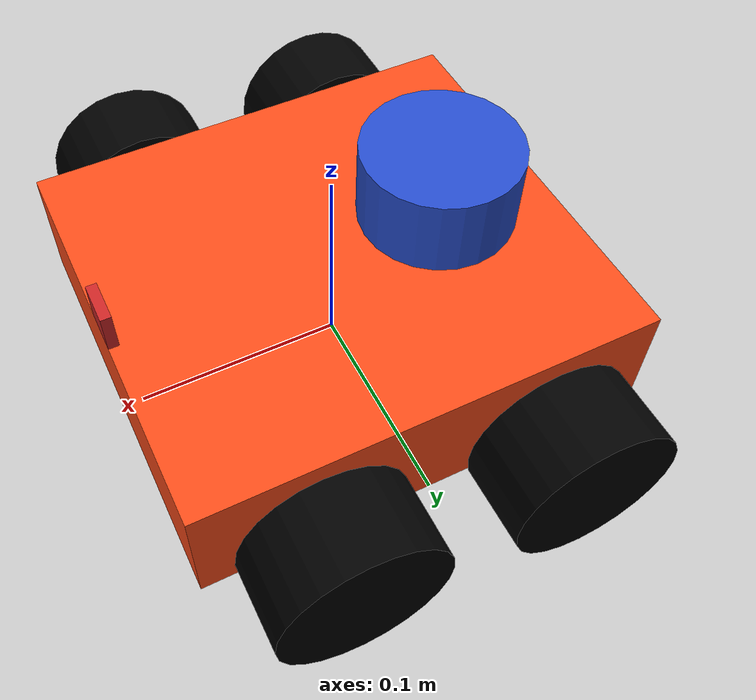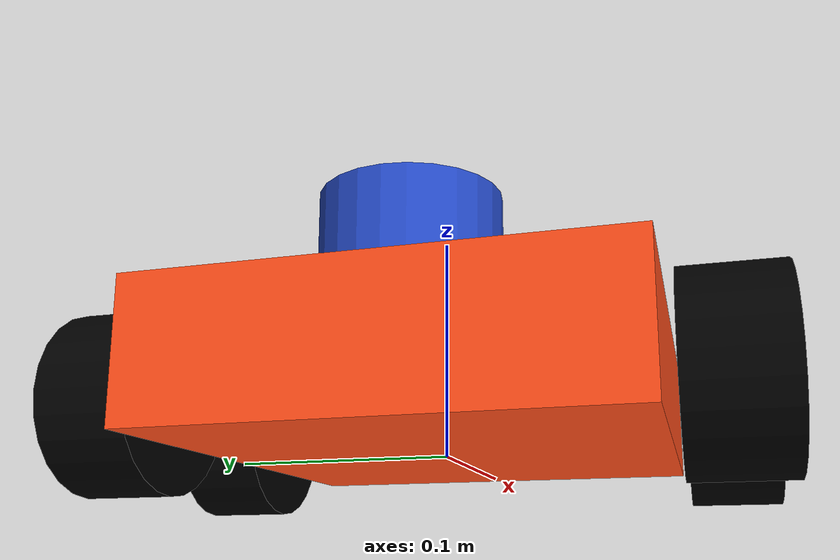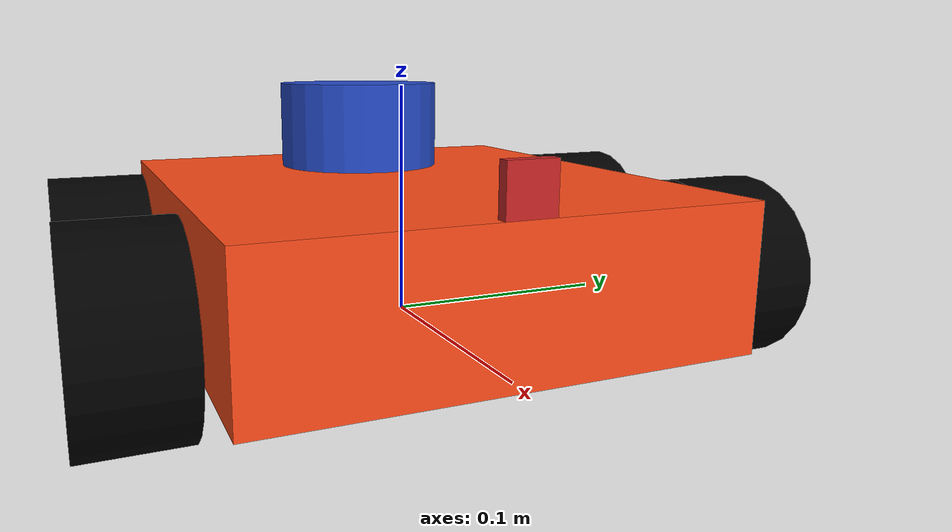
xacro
<?xml version="1.0"?>
<robot xmlns:xacro="http://www.ros.org/wiki/xacro" name="robot">

    <xacro:include filename="robot.gazebo" />

    <xacro:macro name="inertial_box" params="mass x y z *origin">
        <inertial>
            <xacro:insert_block name="origin" />
            <mass value="${mass}" />
            <inertia
                ixx="${(1.0/12.0) * float(mass) * (float(y)*float(y) + float(z)*float(z))}"
                ixy="0.0"
                ixz="0.0"
                iyy="${(1.0/12.0) * float(mass) * (float(x)*float(x) + float(z)*float(z))}"
                iyz="0.0"
                izz="${(1.0/12.0) * float(mass) * (float(x)*float(x) + float(y)*float(y))}" />
        </inertial>
    </xacro:macro>

    <xacro:macro name="inertial_cylinder" params="mass length radius *origin">
        <inertial>
            <xacro:insert_block name="origin" />
            <mass value="${mass}" />
            <inertia
                ixx="${(1.0/12.0) * float(mass) * (3.0*float(radius)*float(radius) + float(length)*float(length))}"
                ixy="0.0"
                ixz="0.0"
                iyy="${(1.0/12.0) * float(mass) * (3.0*float(radius)*float(radius) + float(length)*float(length))}"
                iyz="0.0"
                izz="${(0.5) * float(mass) * float(radius)*float(radius)}" />
        </inertial>
    </xacro:macro>

    <xacro:property name="chassis_length" value="0.22" />
    <xacro:property name="chassis_width" value="0.20" />
    <xacro:property name="chassis_height" value="0.06" />
    <xacro:property name="chassis_mass" value="1.2" />
    <xacro:property name="wheel_radius" value="0.04" />
    <xacro:property name="wheel_thickness" value="0.04" />
    <xacro:property name="wheel_mass" value="0.05" />

    <material name="white">
        <color rgba="1 1 1 1" />
    </material>

    <material name="orange">
        <color rgba="1 0.3 0.1 1" />
    </material>

    <material name="blue">
        <color rgba="0.2 0.2 1 1" />
    </material>

    <material name="black">
        <color rgba="0 0 0 1" />
    </material>

    <material name="red">
        <color rgba="1 0 0 1" />
    </material>

    <!-- Example link -->
    <link name="base_link"></link>

    <joint name="chassis_joint" type="fixed">
        <parent link="base_link" />
        <child link="chassis" />
        <origin xyz="0 0 0" />
    </joint>

    <link name="chassis" type="fixed">
        <visual>
            <origin xyz="0 0 0.03" />
            <geometry>
                <box size="0.22 0.20 0.06" />
            </geometry>
            <material name="orange" />
        </visual>
        <collision>
            <origin xyz="0 0 0.03" />
            <geometry>
                <box size="0.22 0.20 0.06" />
            </geometry>
        </collision>
        <xacro:inertial_box mass="${chassis_mass}" x="${chassis_length}" y="${chassis_width}"
            z="${chassis_height}">
            <origin xyz="0 0 0.03" rpy="0 0 0" />
        </xacro:inertial_box>
    </link>

    <joint name="fl_joint" type="continuous">
        <parent link="base_link" />
        <child link="fl_link" />
        <origin xyz="0.055 0.125 0.02" rpy="-${pi/2} 0 0" />
        <axis xyz="0 0 1" />
    </joint>

    <link name="fl_link" type="continuous">
        <visual>
            <geometry>
                <cylinder radius="0.04" length="0.04" />
            </geometry>
            <material name="black" />
        </visual>
        <collision>
            <geometry>
                <cylinder radius="0.04" length="0.04" />
            </geometry>
        </collision>
        <xacro:inertial_cylinder mass="${wheel_mass}" length="${wheel_thickness}"
            radius="${wheel_radius}">
            <origin xyz="0 0 0" rpy="0 0 0" />
        </xacro:inertial_cylinder>
    </link>

    <joint name="fr_joint" type="continuous">
        <parent link="base_link" />
        <child link="fr_link" />
        <origin xyz="0.055 -0.125 0.02" rpy="${pi/2} 0 0" />
        <axis xyz="0 0 -1" />
    </joint>

    <link name="fr_link" type="continuous">
        <visual>
            <geometry>
                <cylinder radius="0.04" length="0.04" />
            </geometry>
            <material name="black" />
        </visual>
        <collision>
            <geometry>
                <cylinder radius="0.04" length="0.04" />
            </geometry>
        </collision>
        <xacro:inertial_cylinder mass="${wheel_mass}" length="${wheel_thickness}"
            radius="${wheel_radius}">
            <origin xyz="0 0 0" rpy="0 0 0" />
        </xacro:inertial_cylinder>
    </link>

    <joint name="bl_joint" type="continuous">
        <parent link="base_link" />
        <child link="bl_link" />
        <origin xyz="-0.055 0.125 0.02" rpy="-${pi/2} 0 0" />
        <axis xyz="0 0 1" />
    </joint>

    <link name="bl_link" type="continuous">
        <visual>
            <geometry>
                <cylinder radius="0.04" length="0.04" />
            </geometry>
            <material name="black" />
        </visual>
        <collision>
            <geometry>
                <cylinder radius="0.04" length="0.04" />
            </geometry>
        </collision>
        <xacro:inertial_cylinder mass="${wheel_mass}" length="${wheel_thickness}"
            radius="${wheel_radius}">
            <origin xyz="0 0 0" rpy="0 0 0" />
        </xacro:inertial_cylinder>
    </link>

    <joint name="br_joint" type="continuous">
        <parent link="base_link" />
        <child link="br_link" />
        <origin xyz="-0.055 -0.125 0.02" rpy="${pi/2} 0 0" />
        <axis xyz="0 0 -1" />
    </joint>

    <link name="br_link" type="continuous">
        <visual>
            <geometry>
                <cylinder radius="0.04" length="0.04" />
            </geometry>
            <material name="black" />
        </visual>
        <collision>
            <geometry>
                <cylinder radius="0.04" length="0.04" />
            </geometry>
        </collision>
        <xacro:inertial_cylinder mass="${wheel_mass}" length="${wheel_thickness}"
            radius="${wheel_radius}">
            <origin xyz="0 0 0" rpy="0 0 0" />
        </xacro:inertial_cylinder>
    </link>

    <joint name="laser_joint" type="fixed">
        <parent link="chassis" />
        <child link="laser_frame" />
        <origin xyz="-0.055 0 0.08" rpy="0 0 0" />
    </joint>

    <link name="laser_frame">
        <visual>
            <geometry>
                <cylinder radius="0.038" length="0.04" />
            </geometry>
            <material name="Blue" />
        </visual>
        <collision>
            <geometry>
                <cylinder radius="0.038" length="0.04" />
            </geometry>
        </collision>
        <xacro:inertial_cylinder mass="0.1" length="0.04" radius="0.038">
            <origin xyz="0 0 0" rpy="0 0 0" />
        </xacro:inertial_cylinder>
    </link>

    <joint name="camera_joint" type="fixed">
        <parent link="chassis" />
        <child link="camera_link" />
        <origin xyz="0.11 0 0.06" rpy="0 0 0" />
    </joint>

    <link name="camera_link">
        <visual>
            <origin xyz="-0.0025 0 0.01" />
            <geometry>
                <box size="0.005 0.02 0.02" />
            </geometry>
            <material name="Red" />
        </visual>
    </link>

    <joint name="camera_optical_joint" type="fixed">
        <parent link="camera_link" />
        <child link="camera_link_optical" />
        <origin xyz="0 0 0" rpy="${-pi/2} 0 ${-pi/2}" />
    </joint>

    <link name="camera_link_optical"></link>

</robot>
